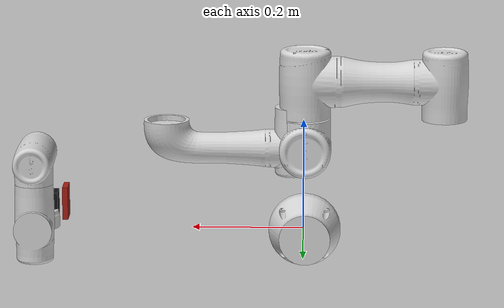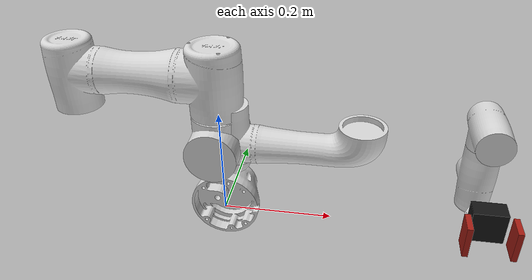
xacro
<?xml version="1.0"?>
<robot xmlns:xacro="http://www.ros.org/wiki/xacro" name="jaka_zu3">
    <xacro:arg name="initial_positions_file" default="initial_positions.yaml" />
    <xacro:arg name="use_gazebo" default="false"/>
    <xacro:arg name="use_rviz_sim" default="false"/>
    <xacro:arg name="enable_camera_sensor" default="true"/>
    <xacro:arg name="enable_grasp_attachment" default="false"/>

    <!-- Import jaka_zu3 urdf file -->
    <xacro:include filename="$(find jaka_description)/urdf/jaka_zu3.urdf" />

    <!-- Import control_xacro -->
    <xacro:include filename="jaka_zu3.ros2_control.xacro" />

    <!-- Import the simulated wrist RGB-D camera. -->
    <xacro:include filename="$(find jaka_description)/urdf/jaka_zu3_tools.xacro" />

    <xacro:jaka_zu3_camera
        parent="Link_6"
        use_gazebo="$(arg use_gazebo)"
        enable_camera_sensor="$(arg enable_camera_sensor)" />
    <xacro:jaka_zu3_parallel_gripper
        parent="Link_6"
        use_gazebo="$(arg use_gazebo)" />

    <!-- 加载 ros2_control 配置 -->
    <xacro:jaka_zu3_ros2_control name="jaka_zu3_hardware" initial_positions_file="$(arg initial_positions_file)" use_gazebo="$(arg use_gazebo)" use_rviz_sim="$(arg use_rviz_sim)" />

    <!-- 核心补充：当开启 use_gazebo 时，加载 Ignition Fortress 的 ros2_control 插件 -->
    <xacro:if value="$(arg use_gazebo)">
        <gazebo>
            <plugin filename="gz_ros2_control-system"
                    name="gz_ros2_control::GazeboSimROS2ControlPlugin">
                <parameters>$(find jaka_zu3_moveit_config)/config/ros2_controllers.yaml</parameters>
            </plugin>
        </gazebo>
        <xacro:if value="$(arg enable_grasp_attachment)">
            <gazebo>
                <plugin filename="ignition-gazebo-detachable-joint-system"
                        name="ignition::gazebo::systems::DetachableJoint">
                    <parent_link>Link_6</parent_link>
                    <child_model>target_cube</child_model>
                    <child_link>link</child_link>
                    <detach_topic>/gripper/detach</detach_topic>
                    <attach_topic>/gripper/attach</attach_topic>
                    <output_topic>/gripper/attached</output_topic>
                </plugin>
            </gazebo>
        </xacro:if>
    </xacro:if>

</robot>

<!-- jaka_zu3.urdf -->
<robot name="jaka_zu3">

    <!-- LINK -->
    <link name="world" />

    <link name="Link_0">
        <inertial>
            <origin xyz="-0.0015666 1.7294E-05 0.05088" rpy="0 0 0" />
            <mass value="3.6417" />
            <inertia ixx="0.0050627" ixy="-6.9042E-07" ixz="-8.4162E-05" iyy="0.0051147" iyz="2.9665E-06" izz="0.006537" />
        </inertial>

        <visual>
            <origin xyz="0 0 0" rpy="0 0 0" />
            <geometry>
                <mesh filename="package://jaka_description/meshes/jaka_zu3_meshes/Link_0.STL" />
            </geometry>
            <material name="">
                <color rgba="0.84706 0.84706 0.84706 1" />
            </material>
        </visual>
        <collision>
            <origin xyz="0 0 0" rpy="0 0 0" />
            <geometry>
                <mesh filename="package://jaka_description/meshes/jaka_zu3_meshes/Link_0.STL" />
            </geometry>
        </collision>
    </link>

    <link name="Link_1">
        <inertial>
            <origin xyz="-3.8197E-07 0.0039623 -0.0033438" rpy="0 0 0" />
            <mass value="7.0387" />
            <inertia ixx="0.012561" ixy="8.1417E-08" ixz="-1.8051E-08" iyy="0.011919" iyz="-8.7195E-05" izz="0.0085506" />
        </inertial>

        <visual>
            <origin xyz="0 0 0" rpy="0 0 0" />
            <geometry>
                <mesh filename="package://jaka_description/meshes/jaka_zu3_meshes/Link_1.STL" />
            </geometry>
            <material name="">
                <color rgba="0.84706 0.84706 0.84706 1" />
            </material>
        </visual>
        <collision>
            <origin xyz="0 0 0" rpy="0 0 0" />
            <geometry>
                <mesh filename="package://jaka_description/meshes/jaka_zu3_meshes/Link_1.STL" />
            </geometry>
        </collision>
    </link>

    <link name="Link_2">
        <inertial>
            <origin xyz="0.11439 -6.6036E-07 -0.11395" rpy="0 0 0" />
            <mass value="18.247" />
            <inertia ixx="0.025431" ixy="1.2399E-06" ixz="-0.0016148" iyy="0.21741" iyz="-2.144E-08" izz="0.20927" />
        </inertial>

        <visual>
            <origin xyz="0 0 0" rpy="0 0 0" />
            <geometry>
                <mesh filename="package://jaka_description/meshes/jaka_zu3_meshes/Link_2.STL" />
            </geometry>
            <material name="">
                <color rgba="0.84706 0.84706 0.84706 1" />
            </material>
        </visual>
        <collision>
            <origin xyz="0 0 0" rpy="0 0 0" />
            <geometry>
                <mesh filename="package://jaka_description/meshes/jaka_zu3_meshes/Link_2.STL" />
            </geometry>
        </collision>
    </link>

    <link name="Link_3">
        <inertial>
            <origin xyz="0.13218 1.2348E-05 -0.0083734" rpy="0 0 0" />
            <mass value="9.5247" />
            <inertia ixx="0.0094701" ixy="7.4928E-07" ixz="-0.0012353" iyy="0.088902" iyz="6.5058E-08" izz="0.084947" />
        </inertial>

        <visual>
            <origin xyz="0 0 0" rpy="0 0 0" />
            <geometry>
                <mesh filename="package://jaka_description/meshes/jaka_zu3_meshes/Link_3.STL" />
            </geometry>
            <material name="">
                <color rgba="0.84706 0.84706 0.84706 1" />
            </material>
        </visual>
        <collision>
            <origin xyz="0 0 0" rpy="0 0 0" />
            <geometry>
                <mesh filename="package://jaka_description/meshes/jaka_zu3_meshes/Link_3.STL" />
            </geometry>
        </collision>
    </link>

    <link name="Link_4">
        <inertial>
            <origin xyz="6.5068E-08 -0.014052 0.0031614" rpy="0 0 0" />
            <mass value="3.8728" />
            <inertia ixx="0.0058546" ixy="-1.505E-08" ixz="-1.7928E-08" iyy="0.0025893" iyz="-0.00019825" izz="0.0056328" />
        </inertial>

        <visual>
            <origin xyz="0 0 0" rpy="0 0 0" />
            <geometry>
                <mesh filename="package://jaka_description/meshes/jaka_zu3_meshes/Link_4.STL" />
            </geometry>
            <material name="">
                <color rgba="0.84706 0.84706 0.84706 1" />
            </material>
        </visual>
        <collision>
            <origin xyz="0 0 0" rpy="0 0 0" />
            <geometry>
                <mesh filename="package://jaka_description/meshes/jaka_zu3_meshes/Link_4.STL" />
            </geometry>
        </collision>
    </link>

    <link name="Link_5">
        <inertial>
            <origin xyz="7.9256E-08 0.0068655 -0.0029086" rpy="0 0 0" />
            <mass value="4.3241" />
            <inertia ixx="0.007903" ixy="4.9677E-09" ixz="1.0083E-08" iyy="0.0028281" iyz="-0.00013094" izz="0.0076792" />
        </inertial>

        <visual>
            <origin xyz="0 0 0" rpy="0 0 0" />
            <geometry>
                <mesh filename="package://jaka_description/meshes/jaka_zu3_meshes/Link_5.STL" />
            </geometry>
            <material name="">
                <color rgba="0.84706 0.84706 0.84706 1" />
            </material>
        </visual>
        <collision>
            <origin xyz="0 0 0" rpy="0 0 0" />
            <geometry>
                <mesh filename="package://jaka_description/meshes/jaka_zu3_meshes/Link_5.STL" />
            </geometry>
        </collision>
    </link>

    <link name="Link_6">
        <inertial>
            <origin xyz="4.9731E-05 -2.965E-05 -0.016372" rpy="0 0 0" />
            <mass value="0.7876" />
            <inertia ixx="0.00028184" ixy="-6.9755E-07" ixz="-4.4645E-07" iyy="0.00028506" iyz="6.0031E-07" izz="0.00045635" />
        </inertial>

        <visual>
            <origin xyz="0 0 0" rpy="0 0 0" />
            <geometry>
                <mesh filename="package://jaka_description/meshes/jaka_zu3_meshes/Link_6.STL" />
            </geometry>
            <material name="">
                <color rgba="0.84706 0.84706 0.84706 1" />
            </material>
        </visual>
        <collision>
            <origin xyz="0 0 0" rpy="0 0 0" />
            <geometry>
                <mesh filename="package://jaka_description/meshes/jaka_zu3_meshes/Link_6.STL" />
            </geometry>
        </collision>
    </link>

    <!-- JOINT -->
    <joint name="fixed" type="fixed">
        <parent link="world" />
        <origin xyz="-0.002 0 -0.00001" rpy="0 0 0" />
        <child link="Link_0" />
    </joint>

    <joint name="joint_1" type="revolute">
        <origin xyz="0 0 0.15055" rpy="0 0 0" />
        <parent link="Link_0" />
        <child link="Link_1" />
        <axis xyz="0 0 1" />
        <limit lower="-6.28" upper="6.28" effort="2000" velocity="3.14" />
    </joint>

    <joint name="joint_2" type="revolute">
        <origin xyz="0 0 0" rpy="1.5708 0 0" />
        <parent link="Link_1" />
        <child link="Link_2" />
        <axis xyz="0 0 1" />
        <limit lower="-1.48" upper="4.62" effort="1500" velocity="3.14" />
    </joint>

    <joint name="joint_3" type="revolute">
        <origin xyz="0.248 0 0" rpy="0 0 0" />
        <parent link="Link_2" />
        <child link="Link_3" />
        <axis xyz="0 0 1" />
        <limit lower="-3.05" upper="3.05" effort="1500" velocity="3.14" />
    </joint>

    <joint name="joint_4" type="revolute">
        <origin xyz="0.228 1.1925E-05 -0.115" rpy="0 0 0" />
        <parent link="Link_3" />
        <child link="Link_4" />
        <axis xyz="0 0 1" />
        <limit lower="-1.48" upper="4.62" effort="1000" velocity="3.84" />
    </joint>

    <joint name="joint_5" type="revolute">
        <origin xyz="0 -0.1175 0" rpy="1.5708 0 0" />
        <parent link="Link_4" />
        <child link="Link_5" />
        <axis xyz="0 0 1" />
        <limit lower="-6.28" upper="6.28" effort="1000" velocity="3.84" />
    </joint>

        <joint name="joint_6" type="revolute">
        <origin xyz="0 0.1065 0" rpy="-1.5708 0 0" />
        <parent link="Link_5" />
        <child link="Link_6" />
        <axis xyz="0 0 1" />
        <limit lower="-6.28" upper="6.28" effort="1000" velocity="3.84" />
    </joint>

    <transmission name="trans_joint_1">
        <type>transmission_interface/SimpleTransmission</type>
        <joint name="joint_1">
            <hardwareInterface>hardware_interface/PositionJointInterface</hardwareInterface>
        </joint>
        <actuator name="joint_1_motor">
            <hardwareInterface>hardware_interface/PositionJointInterface</hardwareInterface>
            <mechanicalReduction>1</mechanicalReduction>
        </actuator>
    </transmission>
    <transmission name="trans_joint_2">
        <type>transmission_interface/SimpleTransmission</type>
        <joint name="joint_2">
            <hardwareInterface>hardware_interface/PositionJointInterface</hardwareInterface>
        </joint>
        <actuator name="joint_2_motor">
            <hardwareInterface>hardware_interface/PositionJointInterface</hardwareInterface>
            <mechanicalReduction>1</mechanicalReduction>
        </actuator>
    </transmission>
    <transmission name="trans_joint_3">
        <type>transmission_interface/SimpleTransmission</type>
        <joint name="joint_3">
            <hardwareInterface>hardware_interface/PositionJointInterface</hardwareInterface>
        </joint>
        <actuator name="joint_3_motor">
            <hardwareInterface>hardware_interface/PositionJointInterface</hardwareInterface>
            <mechanicalReduction>1</mechanicalReduction>
        </actuator>
    </transmission>
    <transmission name="trans_joint_4">
        <type>transmission_interface/SimpleTransmission</type>
        <joint name="joint_4">
            <hardwareInterface>hardware_interface/PositionJointInterface</hardwareInterface>
        </joint>
        <actuator name="joint_4_motor">
            <hardwareInterface>hardware_interface/PositionJointInterface</hardwareInterface>
            <mechanicalReduction>1</mechanicalReduction>
        </actuator>
    </transmission>
    <transmission name="trans_joint_5">
        <type>transmission_interface/SimpleTransmission</type>
        <joint name="joint_5">
            <hardwareInterface>hardware_interface/PositionJointInterface</hardwareInterface>
        </joint>
        <actuator name="joint_5_motor">
            <hardwareInterface>hardware_interface/PositionJointInterface</hardwareInterface>
            <mechanicalReduction>1</mechanicalReduction>
        </actuator>
    </transmission>
    <transmission name="trans_joint_6">
        <type>transmission_interface/SimpleTransmission</type>
        <joint name="joint_6">
            <hardwareInterface>hardware_interface/PositionJointInterface</hardwareInterface>
        </joint>
        <actuator name="joint_6_motor">
            <hardwareInterface>hardware_interface/PositionJointInterface</hardwareInterface>
            <mechanicalReduction>1</mechanicalReduction>
        </actuator>
    </transmission>
</robot>

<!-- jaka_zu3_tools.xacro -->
<robot xmlns:xacro="http://www.ros.org/wiki/xacro">
  <xacro:macro name="jaka_zu3_camera" params="parent use_gazebo:=false enable_camera_sensor:=true">
    <material name="tool_dark">
      <color rgba="0.12 0.14 0.16 1"/>
    </material>
    <link name="camera_link">
      <inertial>
        <mass value="0.08"/>
        <inertia ixx="0.00006" ixy="0" ixz="0" iyy="0.00001" iyz="0" izz="0.00006"/>
      </inertial>
      <visual>
        <geometry>
          <box size="0.02 0.02 0.02"/>
        </geometry>
        <material name="tool_dark"/>
      </visual>
      <collision>
        <geometry>
          <box size="0.025 0.090 0.030"/>
        </geometry>
      </collision>
    </link>

    <!-- Keep the housing clear of the ground at the zero pose. Gazebo depth
         cameras look along local +X; rotate it to look along tool +Z. -->
    <joint name="camera_joint" type="fixed">
      <parent link="${parent}"/>
      <child link="camera_link"/>
      <origin xyz="0 -0.05 -0.02" rpy="-1.57079632679 -1.57079632679 0"/>
    </joint>

    <link name="camera_optical_frame"/>
    <joint name="camera_optical_joint" type="fixed">
      <parent link="camera_link"/>
      <child link="camera_optical_frame"/>
      <origin xyz="0 0 0" rpy="-1.57079632679 0 -1.57079632679"/>
    </joint>

    <xacro:if value="${use_gazebo and enable_camera_sensor}">
      <gazebo reference="camera_link">
        <!-- Keep both aligned image streams inexpensive enough for ros2_control. -->
        <sensor name="wrist_depth_camera" type="depth_camera">
          <pose>0.02 0 0 0 0 0</pose>
          <always_on>true</always_on>
          <update_rate>5</update_rate>
          <visualize>false</visualize>
          <topic>wrist_camera/depth_image</topic>
          <camera>
            <horizontal_fov>1.047</horizontal_fov>
            <image>
              <width>128</width>
              <height>96</height>
              <format>R_FLOAT32</format>
            </image>
            <clip>
              <near>0.10</near>
              <far>3.0</far>
            </clip>
          </camera>
        </sensor>
        <sensor name="wrist_rgb_camera" type="camera">
          <pose>0.014 0 0 0 0 0</pose>
          <always_on>true</always_on>
          <update_rate>5</update_rate>
          <visualize>false</visualize>
          <topic>wrist_camera/rgb_image</topic>
          <camera>
            <horizontal_fov>1.047</horizontal_fov>
            <image>
              <width>128</width>
              <height>96</height>
              <format>R8G8B8</format>
            </image>
            <clip>
              <near>0.10</near>
              <far>3.0</far>
            </clip>
          </camera>
        </sensor>
      </gazebo>
    </xacro:if>
  </xacro:macro>

  <xacro:macro name="jaka_zu3_parallel_gripper" params="parent use_gazebo:=false">
    <material name="gripper_black">
      <color rgba="0.08 0.08 0.08 1"/>
    </material>
    <material name="finger_red">
      <color rgba="0.65 0.12 0.08 1"/>
    </material>
    <link name="gripper_base_link">
      <inertial>
        <mass value="0.12"/>
        <inertia ixx="0.0001" ixy="0" ixz="0" iyy="0.0001" iyz="0" izz="0.0001"/>
      </inertial>
      <visual>
        <geometry>
          <box size="0.06 0.06 0.035"/>
        </geometry>
        <material name="gripper_black"/>
      </visual>
      <collision>
        <geometry>
          <box size="0.06 0.06 0.03"/>
        </geometry>
      </collision>
    </link>
    <joint name="gripper_base_joint" type="fixed">
      <parent link="${parent}"/>
      <child link="gripper_base_link"/>
      <origin xyz="0 0 0.02" rpy="0 0 1.5708"/>
    </joint>
    <link name="left_finger_link">
      <inertial>
        <mass value="0.03"/>
        <inertia ixx="0.00002" ixy="0" ixz="0" iyy="0.00002" iyz="0" izz="0.00002"/>
      </inertial>
      <visual>
        <geometry>
          <box size="0.06 0.01 0.04"/>
        </geometry>
        <material name="finger_red"/>
      </visual>
      <xacro:unless value="${use_gazebo}">
        <collision>
          <geometry>
            <box size="0.06 0.01 0.04"/>
          </geometry>
        </collision>
      </xacro:unless>
    </link>
    <joint name="left_finger_joint" type="prismatic">
      <parent link="gripper_base_link"/>
      <child link="left_finger_link"/>
      <!-- At zero travel the inner faces are 70 mm apart, enough to clear
           the 50 mm target. Positive travel closes both fingers inward. -->
      <origin xyz="0 0.040 0.04" rpy="0 0 0"/>
      <axis xyz="0 -1 0"/>
      <limit lower="0" upper="0.025" effort="20" velocity="0.2"/>
    </joint>
    <link name="right_finger_link">
      <inertial>
        <mass value="0.03"/>
        <inertia ixx="0.00002" ixy="0" ixz="0" iyy="0.00002" iyz="0" izz="0.00002"/>
      </inertial>
      <visual>
        <geometry>
          <box size="0.06 0.01 0.04"/>
        </geometry>
        <material name="finger_red"/>
      </visual>
      <xacro:unless value="${use_gazebo}">
        <collision>
          <geometry>
            <box size="0.06 0.01 0.04"/>
          </geometry>
        </collision>
      </xacro:unless>
    </link>
    <joint name="right_finger_joint" type="prismatic">
      <parent link="gripper_base_link"/>
      <child link="right_finger_link"/>
      <origin xyz="0 -0.040 0.04" rpy="0 0 0"/>
      <axis xyz="0 1 0"/>
      <limit lower="0" upper="0.025" effort="20" velocity="0.2"/>
    </joint>
    <link name="gripper_tcp"/>
    <joint name="gripper_tcp_joint" type="fixed">
      <parent link="gripper_base_link"/>
      <child link="gripper_tcp"/>
      <origin xyz="0 0 -0.105" rpy="0 0 0"/>
    </joint>
    <gazebo reference="left_finger_link">
      <mu1>2.0</mu1>
      <mu2>2.0</mu2>
    </gazebo>
    <gazebo reference="right_finger_link">
      <mu1>2.0</mu1>
      <mu2>2.0</mu2>
    </gazebo>
  </xacro:macro>
</robot>
